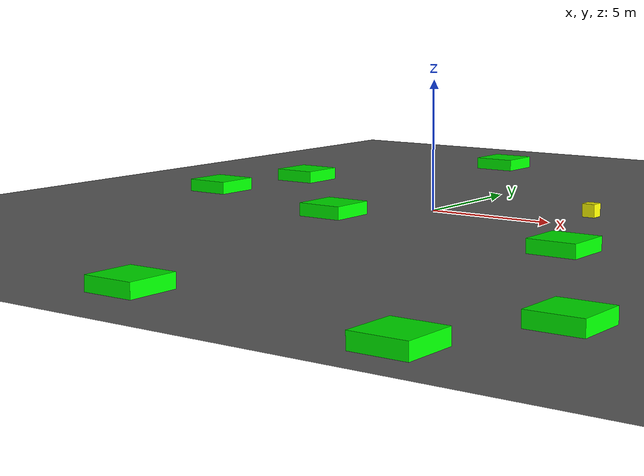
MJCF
<mujoco model="baseline_lvl4_obs8_seed3010">
    <compiler angle="degree" coordinate="local" inertiafromgeom="true"/>
    <option integrator="RK4" timestep="0.01"/>

    <asset>
        <texture builtin="gradient" height="100" rgb1="0.6 0.8 1" rgb2="0 0 0" type="skybox" width="100"/>
        <texture name="floor_texture" type="2d" builtin="checker" width="100" height="100" rgb1="0 0 0" rgb2="0.8 0.8 0.8"/>
        <material name="MatPlane" reflectance="0.5" shininess="1" specular="1" texrepeat="10 10" texture="floor_texture"/>
    </asset>

    <!-- Excluding the contact between the agent and the goal, and the agent and the floor -->
    <contact>
        <exclude body1="agent" body2="goal"/>
        <exclude body1 = "agent" body2 = "floor"/>
    </contact>

    <extension>
        <plugin plugin = "mujoco.pid">
            <instance name = "pid1">
                <config key="kp" value="2"/>
                <config key="ki" value="0"/>
                <config key="kd" value="55"/>
            </instance>
        </plugin>
    </extension>

    <worldbody>
        <light cutoff="100" diffuse="1 1 1" dir="-0 0 -1.3" directional="true" exponent="1" pos="0 0 1.3" specular=".1 .1 .1"/>
        <body name="floor" pos="0 0 0">
            <geom name="floor_geom" type="plane" size="20 20 0.1" material="MatPlane"/>
        </body>

        <!-- Goal -->
        <body name="goal" pos="0.000 0.000 0">
            <geom name="goal_geom" type="plane" size="0.5 0.5 1" pos="0 0 0" rgba="1 0 0 1"/>
        </body>

        <!-- Agent -->
        <body name="agent" pos="5.597 2.178 0.25">
            <joint name="j1" type="slide" axis ="1 0 0 "/>
            <joint name="j2" type="slide" axis ="0 1 0 "/>
            <geom name="agent_geom" type="box" size="0.25 0.25 0.250" rgba="1 1 0 1"/>
        </body>

    <body name="obstacle1" pos="8.207 -4.819 0.250">
      <geom name="obstacle1_geom" type="box"
            size="0.900 0.900 0.250"
            rgba="0 1 0 1"/>
    </body>
    <body name="obstacle2" pos="1.069 -17.064 0.250">
      <geom name="obstacle2_geom" type="box"
            size="0.900 0.900 0.250"
            rgba="0 1 0 1"/>
    </body>
    <body name="obstacle3" pos="-2.431 -3.118 0.250">
      <geom name="obstacle3_geom" type="box"
            size="0.900 0.900 0.250"
            rgba="0 1 0 1"/>
    </body>
    <body name="obstacle4" pos="-4.485 12.817 0.250">
      <geom name="obstacle4_geom" type="box"
            size="0.900 0.900 0.250"
            rgba="0 1 0 1"/>
    </body>
    <body name="obstacle5" pos="-10.303 -0.614 0.250">
      <geom name="obstacle5_geom" type="box"
            size="0.900 0.900 0.250"
            rgba="0 1 0 1"/>
    </body>
    <body name="obstacle6" pos="-9.480 4.119 0.250">
      <geom name="obstacle6_geom" type="box"
            size="0.900 0.900 0.250"
            rgba="0 1 0 1"/>
    </body>
    <body name="obstacle7" pos="13.146 -13.675 0.250">
      <geom name="obstacle7_geom" type="box"
            size="0.900 0.900 0.250"
            rgba="0 1 0 1"/>
    </body>
    <body name="obstacle8" pos="10.894 -17.968 0.250">
      <geom name="obstacle8_geom" type="box"
            size="0.900 0.900 0.250"
            rgba="0 1 0 1"/>
    </body>
    </worldbody>

    <actuator>
        <plugin joint="j1" plugin="mujoco.pid" instance="pid1" />
        <plugin joint="j2" plugin="mujoco.pid" instance="pid1"/>
    </actuator>

  <sensor>
    <distance name="dist1" geom1="agent_geom" geom2="obstacle1_geom" cutoff="1.5"/>
    <distance name="dist2" geom1="agent_geom" geom2="obstacle2_geom" cutoff="1.5"/>
    <distance name="dist3" geom1="agent_geom" geom2="obstacle3_geom" cutoff="1.5"/>
    <distance name="dist4" geom1="agent_geom" geom2="obstacle4_geom" cutoff="1.5"/>
    <distance name="dist5" geom1="agent_geom" geom2="obstacle5_geom" cutoff="1.5"/>
    <distance name="dist6" geom1="agent_geom" geom2="obstacle6_geom" cutoff="1.5"/>
    <distance name="dist7" geom1="agent_geom" geom2="obstacle7_geom" cutoff="1.5"/>
    <distance name="dist8" geom1="agent_geom" geom2="obstacle8_geom" cutoff="1.5"/>
  </sensor>
</mujoco>
